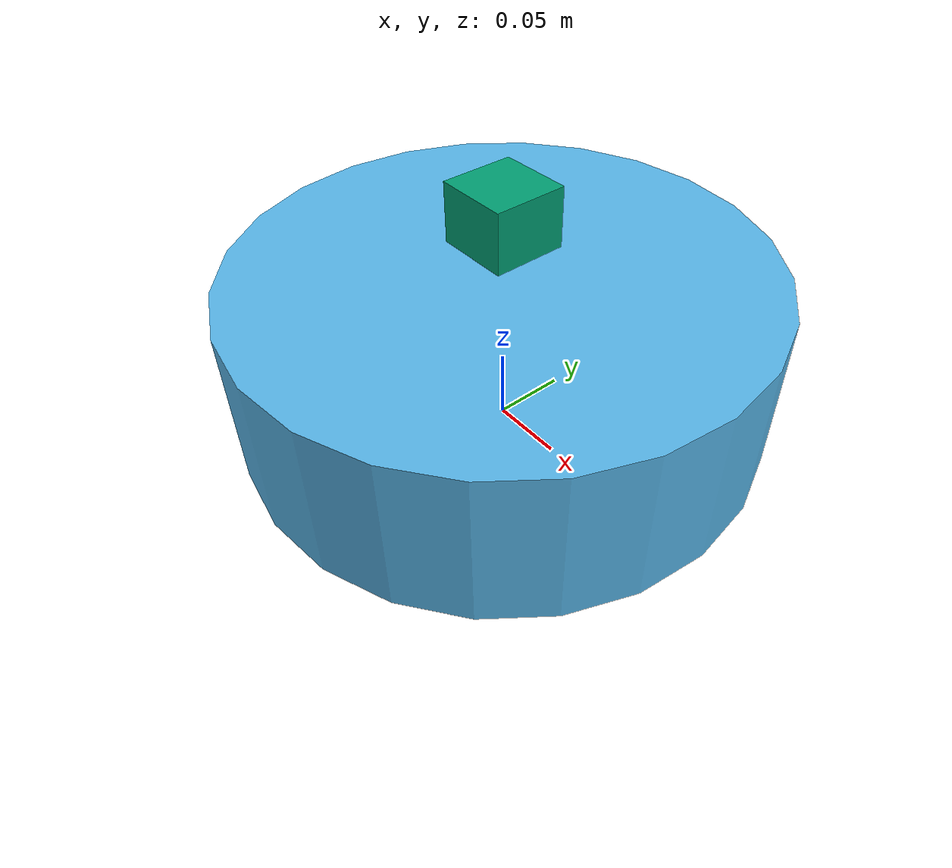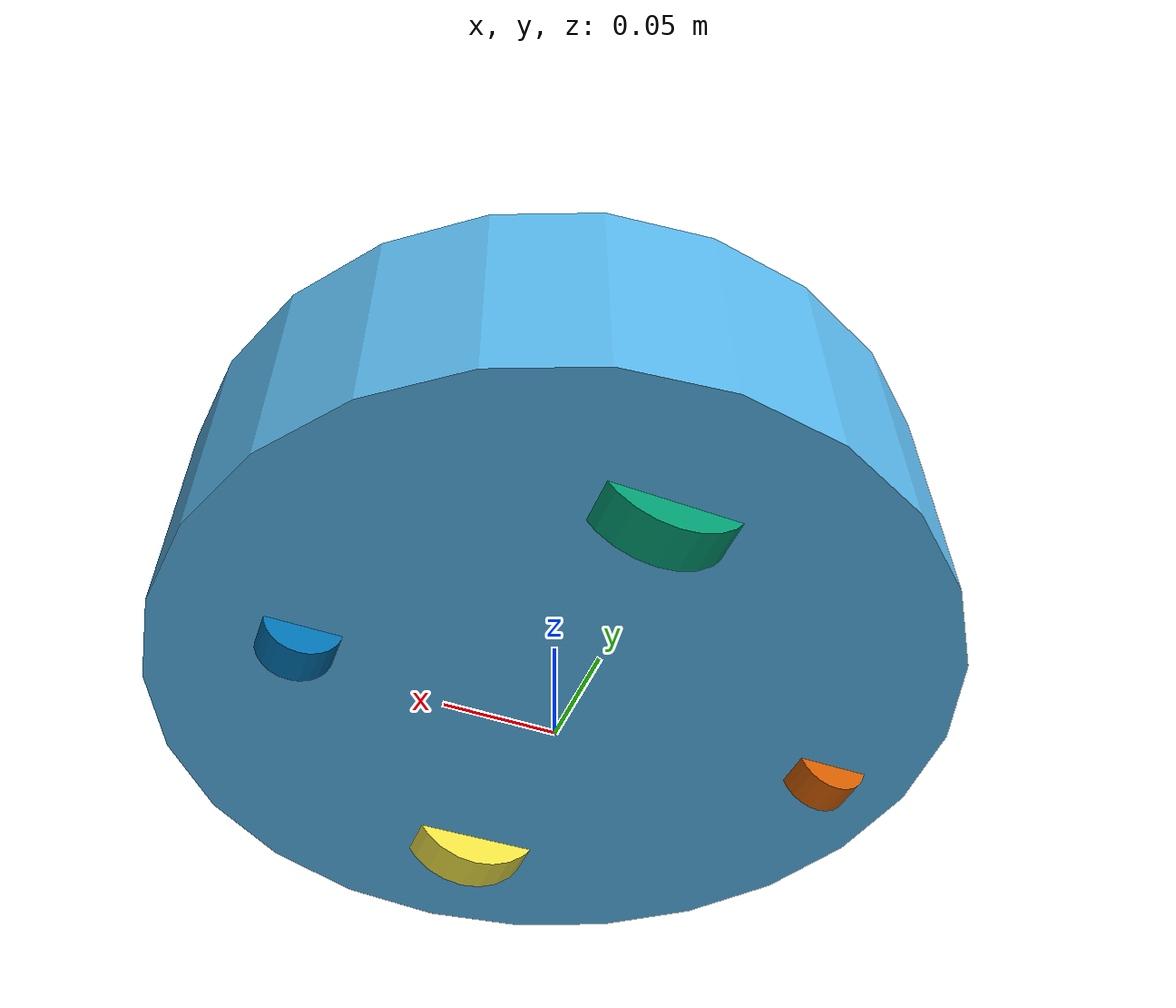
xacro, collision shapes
<?xml version="1.0"?>
<robot name="kobuki_standalone"
       xmlns:sensor="http://playerstage.sourceforge.net/gazebo/xmlschema/#sensor"
       xmlns:controller="http://playerstage.sourceforge.net/gazebo/xmlschema/#controller"
       xmlns:interface="http://playerstage.sourceforge.net/gazebo/xmlschema/#interface"
       xmlns:xacro="http://ros.org/wiki/xacro">

  <xacro:include filename="$(find wandrian_mstc_online)/models/robot/urdf/common_properties.urdf.xacro"/>

  <!-- Model Kobuki -->
  <xacro:include filename="$(find wandrian_mstc_online)/models/kobuki/urdf/kobuki.urdf.xacro"/>
  <model_kobuki/>

  <!-- Model Hokuyo -->
  <xacro:include filename="$(find wandrian_mstc_online)/models/hokuyo/urdf/hokuyo.urdf.xacro"/>
  <model_hokuyo parent="base_link"/>
</robot>

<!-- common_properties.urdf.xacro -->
<!--
  Various useful properties such as constants and materials
 -->
<robot name="xacro_properties" xmlns:xacro="http://ros.org/wiki/xacro">
  <xacro:property name="M_PI" value="3.1415926535897931"/>

  <xacro:property name="material_white">
    <material name="white">
      <color rgba="1 1 1 1"/>
    </material>
  </xacro:property>
  <xacro:property name="material_grey">
    <material name="grey">
      <color rgba="0.5 0.5 0.5 1"/>
    </material>
  </xacro:property>
  <xacro:property name="material_light_grey">
    <material name="light_grey">
      <color rgba="0.6 0.6 0.6 1"/>
    </material>
  </xacro:property>
  <xacro:property name="material_dark_grey">
    <material name="dark_grey">
      <color rgba="0.3 0.3 0.3 1"/>
    </material>
  </xacro:property>
  <xacro:property name="material_black">
    <material name="black">
      <color rgba="0.1 0.1 0.1 1"/>
    </material>
  </xacro:property>
  <xacro:property name="material_red">
    <material name="red">
      <color rgba="1 0 0 1"/>
    </material>
  </xacro:property>
  <xacro:property name="material_green">
    <material name="green">
      <color rgba="0.0 0.8 0.0 1"/>
    </material>
  </xacro:property>
  <xacro:property name="material_blue">
    <material name="blue">
      <color rgba="0.0 0.0 1.0 1"/>
    </material>
  </xacro:property>
  <xacro:property name="material_grey_blue">
    <material name="grey_blue">
      <color rgba="0.4 0.4 1.0 1"/>
    </material>
  </xacro:property>
  <xacro:property name="material_orange">
    <material name="orange">
      <color rgba="1.0 0.7 0.0 1"/>
    </material>
  </xacro:property>
</robot>

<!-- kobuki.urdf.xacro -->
<robot name="model_kobuki" xmlns:xacro="http://ros.org/wiki/xacro">
  <xacro:include filename="$(find wandrian_mstc_online)/models/kobuki/urdf/kobuki_gazebo.urdf.xacro"/>

  <!-- Kobuki -->
  <xacro:macro name="model_kobuki">
    <link name="base_footprint"/>
    <joint name="base_joint" type="fixed">
      <origin xyz="0 0 0.0102" rpy="0 0 0"/>
      <parent link="base_footprint"/>
      <child link="base_link"/>
    </joint>
    <link name="base_link">
      <visual>
        <geometry>
          <!-- new mesh -->
          <mesh filename="package://wandrian_mstc_online/models/kobuki/meshes/main_body.dae"/>
        </geometry>
        <origin xyz="0.001 0 0.05199" rpy="0 0 0"/>
      </visual>
      <collision>
        <geometry>
          <cylinder length="0.10938" radius="0.178"/>
        </geometry>
        <origin xyz="0.0 0 0.05949" rpy="0 0 0"/>
      </collision>
      <inertial>
        <!-- COM experimentally determined -->
        <origin xyz="0.01 0 0"/>
        <mass value="2.4"/> <!-- 2.4/2.6 kg for small/big battery pack -->
        <inertia ixx="0.019995" ixy="0.0" ixz="0.0"
                 iyy="0.019995" iyz="0.0"
                 izz="0.03675"/>
      </inertial>
    </link>

    <joint name="wheel_left_joint" type="continuous">
      <parent link="base_link"/>
      <child link="wheel_left_link"/>
      <origin xyz="0.00 ${0.23/2} 0.0250" rpy="${-M_PI/2} 0 0"/>
      <axis xyz="0 0 1"/>
    </joint>
    <link name="wheel_left_link">
      <visual>
        <geometry>
          <mesh filename="package://wandrian_mstc_online/models/kobuki/meshes/wheel.dae"/>
        </geometry>
        <origin xyz="0 0 0" rpy="0 0 0"/>
      </visual>
      <collision>
        <geometry>
          <cylinder length="0.0206" radius="0.0352"/>
        </geometry>
        <origin rpy="0 0 0" xyz="0 0 0"/>
      </collision>
      <inertial>
        <mass value="0.01"/>
        <origin xyz="0 0 0"/>
        <inertia ixx="0.001" ixy="0.0" ixz="0.0"
                 iyy="0.001" iyz="0.0"
                 izz="0.001"/>
      </inertial>
    </link>

    <joint name="wheel_right_joint" type="continuous">
      <parent link="base_link"/>
      <child link="wheel_right_link"/>
      <origin xyz="0.00 -${0.23/2} 0.0250" rpy="${-M_PI/2} 0 0"/>
      <axis xyz="0 0 1"/>
    </joint>
    <link name="wheel_right_link">
      <visual>
        <geometry>
          <mesh filename="package://wandrian_mstc_online/models/kobuki/meshes/wheel.dae"/>
        </geometry>
        <origin xyz="0 0 0" rpy="0 0 0"/>
      </visual>
      <collision>
        <geometry>
          <cylinder length="0.0206" radius="0.0350"/>
        </geometry>
        <origin rpy="0 0 0" xyz="0 0 0"/>
      </collision>
      <inertial>
        <mass value="0.01"/>
        <origin xyz="0 0 0"/>
        <inertia ixx="0.001" ixy="0.0" ixz="0.0"
                 iyy="0.001" iyz="0.0"
                 izz="0.001"/>
      </inertial>
    </link>

    <joint name="caster_front_joint" type="fixed">
      <parent link="base_link"/>
      <child link="caster_front_link"/>
      <origin xyz="0.115 0.0 0.007" rpy="${-M_PI/2} 0 0"/>
    </joint>
    <link name="caster_front_link">
      <collision>
        <geometry>
          <cylinder length="0.0176" radius="0.017"/>
        </geometry>
        <origin rpy="0 0 0" xyz="0 0 0"/>
      </collision>
      <inertial>
        <mass value="0.01"/>
        <origin xyz="0 0 0"/>
        <inertia ixx="0.001" ixy="0.0" ixz="0.0"
                 iyy="0.001" iyz="0.0"
                 izz="0.001"/>
      </inertial>
    </link>

    <joint name="caster_back_joint" type="fixed">
      <parent link="base_link"/>
      <child link="caster_back_link"/>
      <origin xyz="-0.135 0.0 0.009" rpy="${-M_PI/2} 0 0"/>
    </joint>
    <link name="caster_back_link">
      <collision>
        <geometry>
          <cylinder length="0.0176" radius="0.017"/>
        </geometry>
        <origin rpy="0 0 0" xyz="0 0 0"/>
      </collision>
      <inertial>
        <mass value="0.01"/>
        <origin xyz="0 0 0"/>
        <inertia ixx="0.001" ixy="0.0" ixz="0.0"
                 iyy="0.001" iyz="0.0"
                 izz="0.001"/>
      </inertial>
    </link>

    <!-- Kobuki's sensors -->
    <joint name="gyro_joint" type="fixed">
      <axis xyz="0 1 0"/>
      <origin xyz="0.056 0.062 0.0202" rpy="0 0 0"/>
      <parent link="base_link"/>
      <child link="gyro_link"/>
    </joint>
    <link name="gyro_link">
      <inertial>
        <mass value="0.001"/>
        <origin xyz="0 0 0" rpy="0 0 0"/>
        <inertia ixx="0.0001" ixy="0" ixz="0"
                 iyy="0.000001" iyz="0"
                 izz="0.0001"/>
      </inertial>
    </link>

    <joint name="cliff_sensor_left_joint" type="fixed">
      <origin xyz="0.08734 0.13601 0.0214" rpy="0 ${M_PI/2} 0"/>
      <parent link="base_link"/>
      <child link="cliff_sensor_left_link"/>
    </joint>
    <link name="cliff_sensor_left_link">
      <inertial>
        <mass value="0.0001"/>
        <origin xyz="0 0 0"/>
        <inertia ixx="0.0001" ixy="0.0" ixz="0.0"
                 iyy="0.0001" iyz="0.0"
                 izz="0.0001"/>
      </inertial>
    </link>

    <joint name="cliff_sensor_right_joint" type="fixed">
      <origin xyz="0.085 -0.13601 0.0214" rpy="0 ${M_PI/2} 0"/>
      <parent link="base_link"/>
      <child link="cliff_sensor_right_link"/>
    </joint>
    <link name="cliff_sensor_right_link">
      <inertial>
        <mass value="0.0001"/>
        <origin xyz="0 0 0"/>
        <inertia ixx="0.0001" ixy="0.0" ixz="0.0"
                 iyy="0.0001" iyz="0.0"
                 izz="0.0001"/>
      </inertial>
    </link>

    <joint name="cliff_sensor_front_joint" type="fixed">
      <origin xyz="0.156 0.00 0.0214" rpy="0 ${M_PI/2} 0"/>
      <parent link="base_link"/>
      <child link="cliff_sensor_front_link"/>
    </joint>
    <link name="cliff_sensor_front_link">
      <inertial>
        <mass value="0.0001"/>
        <origin xyz="0 0 0"/>
        <inertia ixx="0.0001" ixy="0.0" ixz="0.0"
                 iyy="0.0001" iyz="0.0"
                 izz="0.0001"/>
      </inertial>
    </link>

    <!-- Set up Kobuki Gazebo simulation details -->
    <gazebo_kobuki/>
  </xacro:macro>
</robot>

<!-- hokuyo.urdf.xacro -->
<robot name="model_hokuyo" xmlns:xacro="http://ros.org/wiki/xacro">
  <xacro:include filename="$(find wandrian_mstc_online)/models/hokuyo/urdf/hokuyo_gazebo.urdf.xacro"/>

  <!-- Hokuyo 2D LIDAR -->
  <xacro:macro name="model_hokuyo" params="parent">
    <joint name="laser_sensor_joint" type="fixed">
      <origin xyz="0.0 0.0 0.15" rpy="0.0 0.0 0.0"/>
      <parent link="${parent}"/>
      <child link="laser_sensor_link"/>
    </joint>

    <link name="laser_sensor_link">
      <visual name="visual">
        <geometry>
          <mesh filename="package://wandrian_mstc_online/models/hokuyo/meshes/hokuyo.dae"/>
        </geometry>
      </visual>

      <inertial>
        <mass value="0.000001"/>
        <origin xyz="0 0 0"/>
        <inertia ixx="0.0001" ixy="0.0" ixz="0.0" iyy="0.0001" iyz="0.0" izz="0.0001"/>
      </inertial>

      <collision name="collision-base">
        <pose>0 0 -0.0145 0 0 0</pose>
        <geometry>
          <box size="0.05 0.05 0.041"/>
        </geometry>
      </collision>

      <collision name="collision-top">
        <pose>0 0 0.0205 0 0 0</pose>
        <geometry>
          <cylinder radius="0.021" length="0.029"/>
        </geometry>
      </collision>
    </link>

    <!-- Set up Hokuyo Gazebo simulation details -->
    <gazebo_hokuyo/>
  </xacro:macro>
</robot>
